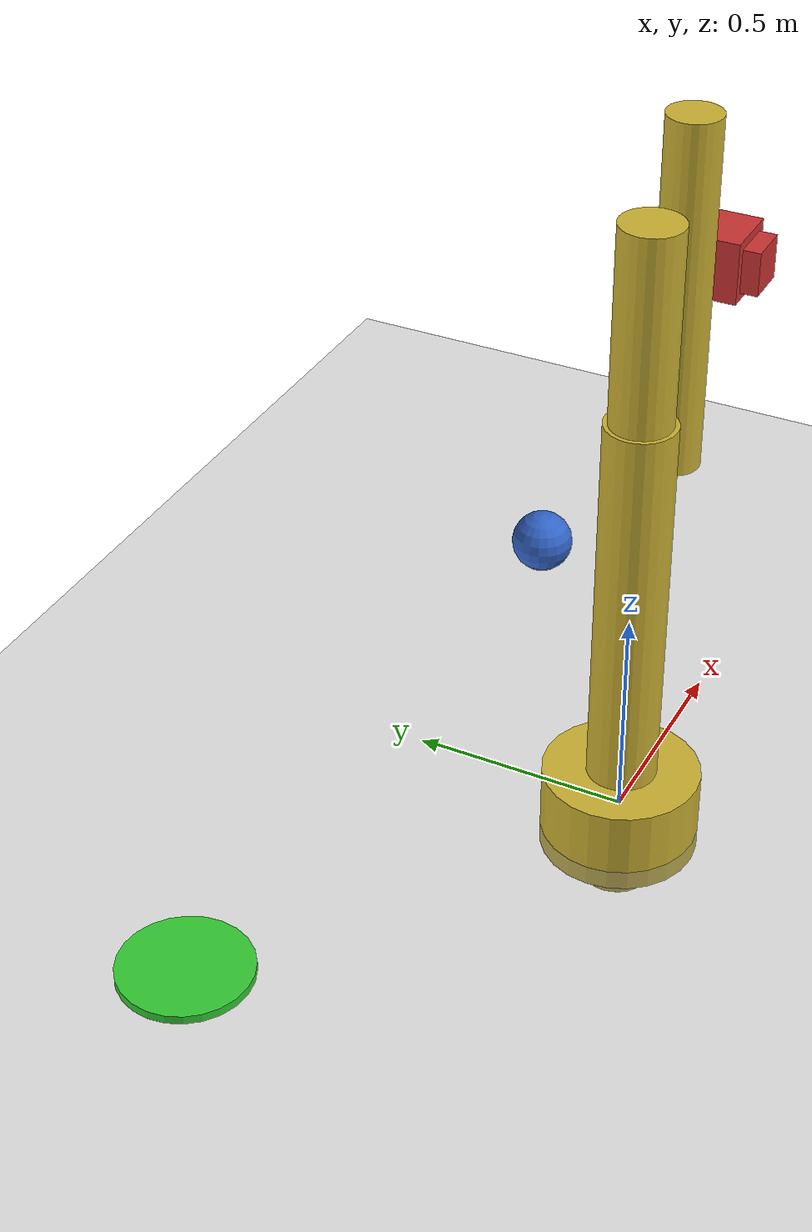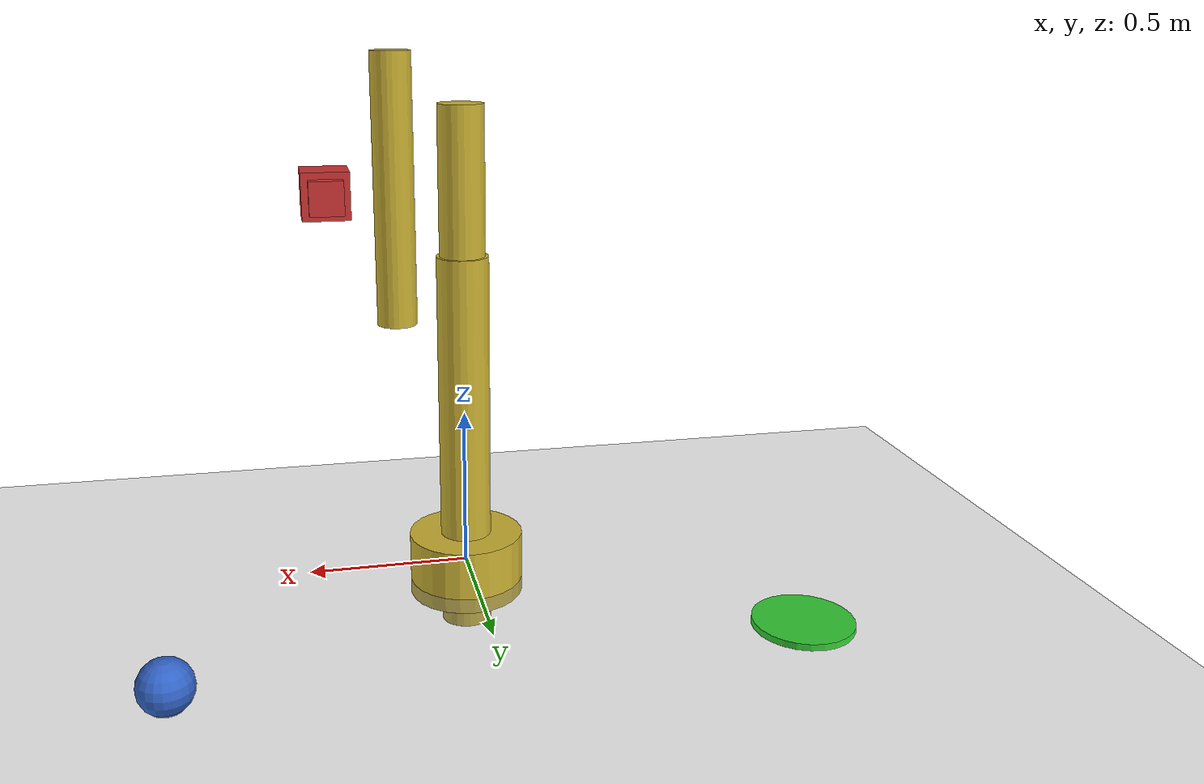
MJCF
<mujoco model="3-DOF Robot Arm with Auto Reset">
  <compiler angle="radian" inertiafromgeom="true"/>
  <option timestep="0.005" gravity="0 0 -9.81"/>
  <visual>
    <global azimuth="30" elevation="-25"/>  <!-- 清晰3D视角 -->
  </visual>
  <asset>
    <material name="red" rgba="0.8 0.2 0.2 1"/>
    <material name="yellow" rgba="0.8 0.7 0.2 1"/>
    <material name="gray" rgba="0.5 0.5 0.5 1"/>
    <material name="blue" rgba="0.2 0.4 0.8 1"/>
    <material name="green" rgba="0.2 0.8 0.2 1"/>
  </asset>

  <!-- 世界体定义 -->
  <worldbody>
    <!-- 固定监控相机 -->
    <camera name="monitor_camera" pos="1.8 1.8 1.2" xyaxes="1 0 0 0 1 0"/>
    <!-- 工作平台 -->
    <geom name="workbench" type="plane" size="2 2 0.1" pos="0 0 -0.05" material="gray"/>
    <!-- 待抓取目标：蓝色球体（易抓取，不易滚落） -->
    <body name="target_ball" pos="0.9 0.6 0.0">
      <geom name="target_geom" type="sphere" size="0.08" pos="0 0 0" material="blue"/>
      <joint name="target_joint" type="free"/>
    </body>
    <!-- 目标放置区域：绿色圆形标记 -->
    <geom name="place_area" type="cylinder" size="0.15 0.01" pos="-0.9 0.6 0.0" material="green"/>
    <!-- 3自由度机械臂 -->
    <body name="robot_base" pos="0 0 0.0">
      <geom name="base_geom" type="cylinder" size="0.18 0.1" pos="0 0 0" material="yellow"/>
      <joint name="base_joint" type="free"/>

      <!-- 关节1：基座旋转（Z轴） -->
      <body name="arm_1" pos="0 0 0.1">
        <geom name="arm1_geom" type="cylinder" size="0.08 0.6" pos="0 0 0.3" material="yellow"/>
        <joint name="joint1_rotate" type="hinge" axis="0 0 1" pos="0 0 0" range="-3.14 3.14" damping="0.03"/>

        <!-- 关节2：大臂俯仰（Y轴） -->
        <body name="arm_2" pos="0 0 0.6">
          <geom name="arm2_geom" type="cylinder" size="0.07 0.5" pos="0 0 0.25" material="yellow"/>
          <joint name="joint2_pitch" type="hinge" axis="0 1 0" pos="0 0 0" range="-1.5 1.5" damping="0.03"/>

          <!-- 关节3：小臂伸缩（X轴） -->
          <body name="arm_3" pos="0 0 0.5">
            <geom name="arm3_geom" type="cylinder" size="0.06 0.4" pos="0.2 0 0" material="yellow"/>
            <joint name="joint3_telescope" type="slide" axis="1 0 0" pos="0 0 0" range="0 0.4" damping="0.03"/>

            <!-- 平行夹爪 -->
            <body name="gripper_base" pos="0.4 0 0">
              <geom name="gripper_base_geom" type="box" size="0.07 0.07 0.07" pos="0 0 0" material="red"/>

              <!-- 左夹爪 -->
              <body name="gripper_left" pos="0 0.07 0">
                <geom name="gripper_left_geom" type="box" size="0.05 0.04 0.05" pos="0 0 0" material="red"/>
                <joint name="gripper_left_joint" type="hinge" axis="0 0 1" pos="0 -0.07 0" range="-0.4 0" damping="0.02"/>
              </body>

              <!-- 右夹爪 -->
              <body name="gripper_right" pos="0 -0.07 0">
                <geom name="gripper_right_geom" type="box" size="0.05 0.04 0.05" pos="0 0 0" material="red"/>
                <joint name="gripper_right_joint" type="hinge" axis="0 0 1" pos="0 0.07 0" range="0 0.4" damping="0.02"/>
              </body>
            </body>
          </body>
        </body>
      </body>
    </body>
  </worldbody>

  <!-- 执行器配置（MuJoCo 3.4.0 完全兼容） -->
  <actuator>
    <!-- 关节位置控制（高精度） -->
    <position name="joint1_act" joint="joint1_rotate" kp="1100" kv="100"/>
    <position name="joint2_act" joint="joint2_pitch" kp="1100" kv="100"/>
    <position name="joint3_act" joint="joint3_telescope" kp="1100" kv="100"/>

    <!-- 夹爪速度控制（软接触，防损坏） -->
    <velocity name="gripper_left_act" joint="gripper_left_joint" kv="40" ctrlrange="-0.3 0"/>
    <velocity name="gripper_right_act" joint="gripper_right_joint" kv="40" ctrlrange="0 0.3"/>
  </actuator>
</mujoco>
